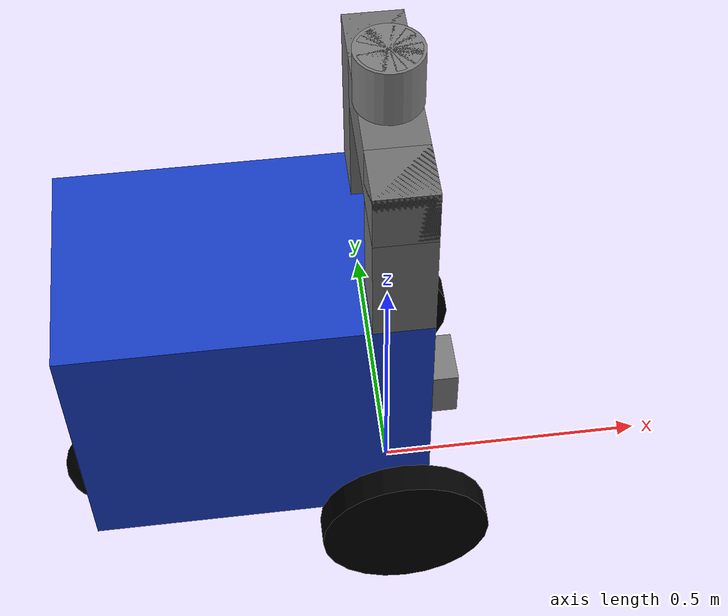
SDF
<?xml version="1.0"?>
<sdf version="1.9">
  <model name="robot">
    <static>false</static>
    <pose>0 0 0 0 0 0</pose>

    <link name="base_link">
      <pose>0 0 0.15 0 0 0</pose>
      <inertial>
        <mass>50.0</mass>
        <pose>-0.1 0 0 0 0 0</pose>
        <inertia>
          <ixx>5.0</ixx>
          <iyy>5.0</iyy>
          <izz>5.0</izz>
          <ixy>0</ixy>
          <ixz>0</ixz>
          <iyz>0</iyz>
        </inertia>
      </inertial>
      <collision name="collision">
        <pose>-0.25 0 0.25 0 0 0</pose>
        <geometry><box><size>0.6 0.4 0.5</size></box></geometry>
      </collision>
      <visual name="visual">
        <pose>-0.25 0 0.25 0 0 0</pose>
        <geometry><box><size>0.6 0.4 0.5</size></box></geometry>
        <material>
          <ambient>0.1 0.25 0.8 1</ambient>
          <diffuse>0.1 0.25 0.8 1</diffuse>
        </material>
      </visual>
    </link>

    <link name="left_wheel_link">
      <pose>0 0.25 0.15 0 0 0</pose>
      <inertial>
        <mass>1.0</mass>
        <inertia><ixx>0.01</ixx><iyy>0.01</iyy><izz>0.005</izz><ixy>0</ixy><ixz>0</ixz><iyz>0</iyz></inertia>
      </inertial>
      <collision name="collision">
        <pose>0 0 0 1.5708 0 0</pose>
        <geometry><cylinder><radius>0.15</radius><length>0.05</length></cylinder></geometry>
      </collision>
      <visual name="visual">
        <pose>0 0 0 1.5708 0 0</pose>
        <geometry><cylinder><radius>0.15</radius><length>0.05</length></cylinder></geometry>
        <material><ambient>0 0 0 1</ambient><diffuse>0 0 0 1</diffuse></material>
      </visual>
    </link>

    <joint name="left_wheel_joint" type="revolute">
      <parent>base_link</parent>
      <child>left_wheel_link</child>
      <axis>
        <xyz>0 1 0</xyz>
        <limit><lower>-1e16</lower><upper>1e16</upper></limit>
      </axis>
    </joint>

    <link name="right_wheel_link">
      <pose>0 -0.25 0.15 0 0 0</pose>
      <inertial>
        <mass>1.0</mass>
        <inertia><ixx>0.01</ixx><iyy>0.01</iyy><izz>0.005</izz><ixy>0</ixy><ixz>0</ixz><iyz>0</iyz></inertia>
      </inertial>
      <collision name="collision">
        <pose>0 0 0 1.5708 0 0</pose>
        <geometry><cylinder><radius>0.15</radius><length>0.05</length></cylinder></geometry>
      </collision>
      <visual name="visual">
        <pose>0 0 0 1.5708 0 0</pose>
        <geometry><cylinder><radius>0.15</radius><length>0.05</length></cylinder></geometry>
        <material><ambient>0 0 0 1</ambient><diffuse>0 0 0 1</diffuse></material>
      </visual>
    </link>

    <joint name="right_wheel_joint" type="revolute">
      <parent>base_link</parent>
      <child>right_wheel_link</child>
      <axis>
        <xyz>0 1 0</xyz>
        <limit><lower>-1e16</lower><upper>1e16</upper></limit>
      </axis>
    </joint>

    <link name="rear_caster_link">
      <pose>-0.55 0 0.07 0 0 0</pose>
      <inertial>
        <mass>5.0</mass>
        <inertia><ixx>0.01</ixx><iyy>0.01</iyy><izz>0.01</izz><ixy>0</ixy><ixz>0</ixz><iyz>0</iyz></inertia>
      </inertial>
      <collision name="collision"><geometry><sphere><radius>0.07</radius></sphere></geometry></collision>
      <visual name="visual">
        <geometry><sphere><radius>0.07</radius></sphere></geometry>
        <material><ambient>0 0 0 1</ambient><diffuse>0 0 0 1</diffuse></material>
      </visual>
    </link>

    <joint name="rear_caster_joint" type="ball">
      <parent>base_link</parent>
      <child>rear_caster_link</child>
    </joint>

    <link name="laser">
      <pose>0.075 0 0.25 0 0 0</pose>
      <inertial>
        <mass>0.5</mass>
        <inertia><ixx>0.001</ixx><iyy>0.001</iyy><izz>0.001</izz><ixy>0</ixy><ixz>0</ixz><iyz>0</iyz></inertia>
      </inertial>
      <visual name="visual">
        <geometry><box><size>0.1 0.1 0.1</size></box></geometry>
        <material><ambient>0.5 0.5 0.5 1</ambient><diffuse>0.5 0.5 0.5 1</diffuse></material>
      </visual>
      <sensor name="utm30" type="gpu_lidar">
        <topic>/scan</topic>
        <update_rate>40</update_rate>
        <lidar>
          <scan>
            <horizontal>
              <samples>1080</samples>
              <resolution>1</resolution>
              <min_angle>-2.35619</min_angle>
              <max_angle>2.35619</max_angle>
            </horizontal>
          </scan>
          <range><min>0.2</min><max>30.0</max><resolution>0.01</resolution></range>
        </lidar>
        <always_on>true</always_on>
        <visualize>true</visualize>
      </sensor>
    </link>

    <joint name="laser_joint" type="fixed">
      <parent>base_link</parent>
      <child>laser</child>
    </joint>

    <link name="pillar_left">
      <pose>0 0.15 0.8025 0 0 0</pose>
      <inertial>
        <mass>1.0</mass>
        <inertia><ixx>0.005</ixx><iyy>0.005</iyy><izz>0.005</izz><ixy>0</ixy><ixz>0</ixz><iyz>0</iyz></inertia>
      </inertial>
      <collision name="collision">
        <geometry><box><size>0.1 0.1 0.305</size></box></geometry>
      </collision>
      <visual name="visual">
        <geometry><box><size>0.1 0.1 0.305</size></box></geometry>
        <material><ambient>0.45 0.45 0.45 1</ambient><diffuse>0.45 0.45 0.45 1</diffuse></material>
      </visual>
    </link>

    <joint name="pillar_left_joint" type="fixed">
      <parent>base_link</parent>
      <child>pillar_left</child>
    </joint>

    <link name="pillar_right">
      <pose>0 -0.15 0.8025 0 0 0</pose>
      <inertial>
        <mass>1.0</mass>
        <inertia><ixx>0.005</ixx><iyy>0.005</iyy><izz>0.005</izz><ixy>0</ixy><ixz>0</ixz><iyz>0</iyz></inertia>
      </inertial>
      <collision name="collision">
        <geometry><box><size>0.1 0.1 0.305</size></box></geometry>
      </collision>
      <visual name="visual">
        <geometry><box><size>0.1 0.1 0.305</size></box></geometry>
        <material><ambient>0.45 0.45 0.45 1</ambient><diffuse>0.45 0.45 0.45 1</diffuse></material>
      </visual>
    </link>

    <joint name="pillar_right_joint" type="fixed">
      <parent>base_link</parent>
      <child>pillar_right</child>
    </joint>

    <link name="pillar_beam">
      <pose>0 0 0.905 0 0 0</pose>
      <inertial>
        <mass>1.0</mass>
        <inertia><ixx>0.005</ixx><iyy>0.005</iyy><izz>0.005</izz><ixy>0</ixy><ixz>0</ixz><iyz>0</iyz></inertia>
      </inertial>
      <collision name="collision">
        <geometry><box><size>0.1 0.4 0.1</size></box></geometry>
      </collision>
      <visual name="visual">
        <geometry><box><size>0.1 0.4 0.1</size></box></geometry>
        <material><ambient>0.45 0.45 0.45 1</ambient><diffuse>0.45 0.45 0.45 1</diffuse></material>
      </visual>
    </link>

    <joint name="pillar_beam_joint" type="fixed">
      <parent>base_link</parent>
      <child>pillar_beam</child>
    </joint>

    <link name="mid360_dummy">
      <pose>0 0 1.005 0 0 0</pose>
      <inertial>
        <mass>0.5</mass>
        <inertia><ixx>0.005</ixx><iyy>0.005</iyy><izz>0.005</izz><ixy>0</ixy><ixz>0</ixz><iyz>0</iyz></inertia>
      </inertial>
      <visual name="visual">
        <geometry><cylinder><radius>0.055</radius><length>0.1</length></cylinder></geometry>
        <material><ambient>0.5 0.5 0.5 1</ambient><diffuse>0.5 0.5 0.5 1</diffuse></material>
      </visual>
    </link>

    <joint name="mid360_dummy_joint" type="fixed">
      <parent>base_link</parent>
      <child>mid360_dummy</child>
    </joint>

    <link name="mid360_frame">
      <pose>0 0 1.005 0 0 0</pose>
      <inertial>
        <mass>1.0</mass>
        <inertia><ixx>0.01</ixx><iyy>0.01</iyy><izz>0.01</izz><ixy>0</ixy><ixz>0</ixz><iyz>0</iyz></inertia>
      </inertial>
      <visual name="visual">
        <geometry><cylinder><radius>0.05</radius><length>0.1</length></cylinder></geometry>
        <material><ambient>0.5 0.5 0.5 1</ambient><diffuse>0.5 0.5 0.5 1</diffuse></material>
      </visual>
      <sensor name="mid360" type="gpu_lidar">
        <topic>/mid360/livox/lidar</topic>
        <update_rate>10</update_rate>
        <lidar>
          <scan>
            <horizontal>
              <samples>900</samples>
              <resolution>1</resolution>
              <min_angle>-3.14159</min_angle>
              <max_angle>3.14159</max_angle>
            </horizontal>
            <vertical>
              <samples>24</samples>
              <resolution>1</resolution>
              <min_angle>-0.122</min_angle>
              <max_angle>0.907</max_angle>
            </vertical>
          </scan>
          <range><min>0.2</min><max>40.0</max><resolution>0.02</resolution></range>
        </lidar>
        <always_on>true</always_on>
        <visualize>false</visualize>
      </sensor>
    </link>

    <joint name="mid360_joint" type="fixed">
      <parent>base_link</parent>
      <child>mid360_frame</child>
    </joint>

    <plugin filename="gz-sim-diff-drive-system" name="gz::sim::systems::DiffDrive">
      <left_joint>left_wheel_joint</left_joint>
      <right_joint>right_wheel_joint</right_joint>
      <wheel_separation>0.5</wheel_separation>
      <wheel_radius>0.15</wheel_radius>
      <topic>/cmd_vel</topic>
      <odom_topic>/ypspur_ros/odom</odom_topic>
      <frame_id>odom</frame_id>
      <child_frame_id>base_link</child_frame_id>
      <odom_publish_frequency>40</odom_publish_frequency>
      <max_linear_acceleration>1.0</max_linear_acceleration>
      <max_angular_acceleration>2.0</max_angular_acceleration>
    </plugin>
  </model>
</sdf>
